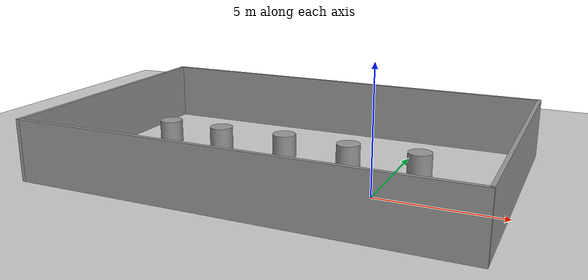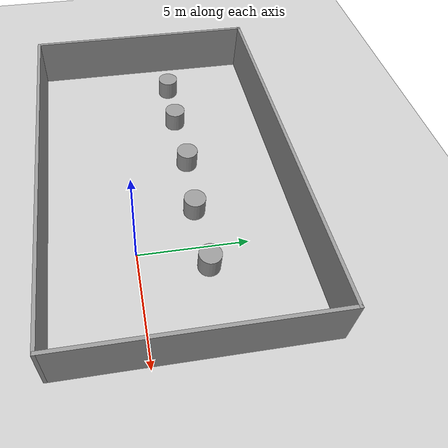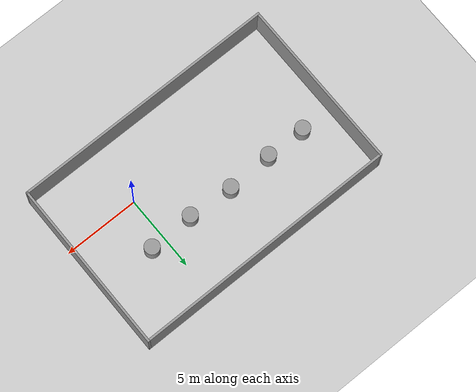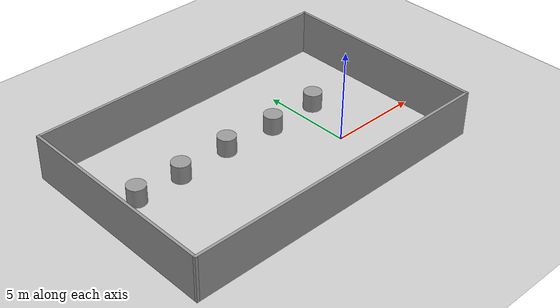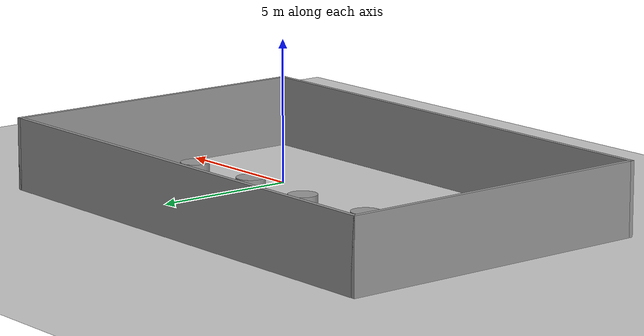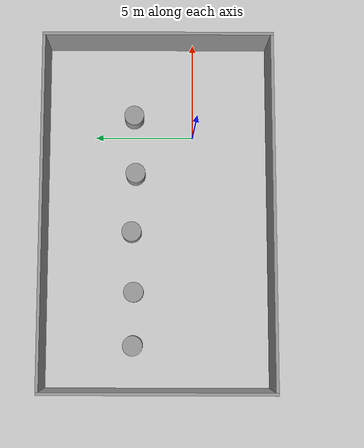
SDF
<sdf version="1.6">
 <world name="default">
  <light name="sun" type="directional">
   <pose>0 0 10 0 -0 0</pose>
   <diffuse>0.8 0.8 0.8 1</diffuse>
   <specular>0.2 0.2 0.2 1</specular>
   <attenuation>
    <range>1000</range>
    <constant>0.9</constant>
    <linear>0.01</linear>
    <quadratic>0.001</quadratic>
   </attenuation>
   <direction>-0.5 0.1 -0.9</direction>
  </light>
  <model name="ground_plane">
   <static>1</static>
   <link name="link">
    <collision name="collision">
     <geometry><plane><normal>0 0 1</normal><size>100 100</size></plane></geometry>
     <surface>
      <contact><collide_bitmask>65535</collide_bitmask></contact>
      <friction><ode><mu>100</mu><mu2>50</mu2></ode></friction>
     </surface>
    </collision>
    <visual name="visual">
     <cast_shadows>0</cast_shadows>
     <geometry><plane><normal>0 0 1</normal><size>100 100</size></plane></geometry>
     <material>
      <script><uri>file://media/materials/scripts/gazebo.material</uri><name>Gazebo/Grey</name></script>
     </material>
    </visual>
   </link>
  </model>
  <gravity>0 0 -9.8</gravity>
  <magnetic_field>6e-06 2.3e-05 -4.2e-05</magnetic_field>
  <atmosphere type="adiabatic"/>
  <physics name="default_physics" default="0" type="ode">
   <max_step_size>0.001</max_step_size>
   <real_time_factor>1</real_time_factor>
   <real_time_update_rate>1000</real_time_update_rate>
  </physics>
  <scene><ambient>0.4 0.4 0.4 1</ambient><background>0.7 0.7 0.7 1</background><shadows>1</shadows></scene>
  <audio><device>default</device></audio>
  <spherical_coordinates>
   <surface_model>EARTH_WGS84</surface_model>
   <latitude_deg>0</latitude_deg>
   <longitude_deg>0</longitude_deg>
   <elevation>0</elevation>
   <heading_deg>0</heading_deg>
  </spherical_coordinates>
  <model name="Wall">
   <pose>-3.98523 1.81274 0 0 -0 0</pose>
   <link name="Wall_3">
    <collision name="Wall_3_Collision">
     <geometry><box><size>17.75 0.15 2.5</size></box></geometry>
     <pose>0 0 1.25 0 -0 0</pose>
    </collision>
    <visual name="Wall_3_Visual">
     <pose>0 0 1.25 0 -0 0</pose>
     <geometry><box><size>17.75 0.15 2.5</size></box></geometry>
     <material>
      <script><uri>file://media/materials/scripts/gazebo.material</uri><name>Gazebo/Grey</name></script>
      <ambient>1 1 1 1</ambient>
     </material>
     <meta><layer>0</layer></meta>
    </visual>
    <pose>0 5.675 0 0 -0 0</pose>
   </link>
   <link name="Wall_4">
    <collision name="Wall_4_Collision">
     <geometry><box><size>11.5 0.15 2.5</size></box></geometry>
     <pose>0 0 1.25 0 -0 0</pose>
    </collision>
    <visual name="Wall_4_Visual">
     <pose>0 0 1.25 0 -0 0</pose>
     <geometry><box><size>11.5 0.15 2.5</size></box></geometry>
     <material>
      <script><uri>file://media/materials/scripts/gazebo.material</uri><name>Gazebo/Grey</name></script>
      <ambient>1 1 1 1</ambient>
     </material>
     <meta><layer>0</layer></meta>
    </visual>
    <pose>8.8 0 0 0 -0 -1.5708</pose>
   </link>
   <link name="Wall_5">
    <collision name="Wall_5_Collision">
     <geometry><box><size>17.75 0.15 2.5</size></box></geometry>
     <pose>0 0 1.25 0 -0 0</pose>
    </collision>
    <visual name="Wall_5_Visual">
     <pose>0 0 1.25 0 -0 0</pose>
     <geometry><box><size>17.75 0.15 2.5</size></box></geometry>
     <material>
      <script><uri>file://media/materials/scripts/gazebo.material</uri><name>Gazebo/Grey</name></script>
      <ambient>1 1 1 1</ambient>
     </material>
     <meta><layer>0</layer></meta>
    </visual>
    <pose>0 -5.675 0 0 -0 3.14159</pose>
   </link>
   <link name="Wall_6">
    <collision name="Wall_6_Collision">
     <geometry><box><size>11.5 0.15 2.5</size></box></geometry>
     <pose>0 0 1.25 0 -0 0</pose>
    </collision>
    <visual name="Wall_6_Visual">
     <pose>0 0 1.25 0 -0 0</pose>
     <geometry><box><size>11.5 0.15 2.5</size></box></geometry>
     <material>
      <script><uri>file://media/materials/scripts/gazebo.material</uri><name>Gazebo/Grey</name></script>
      <ambient>1 1 1 1</ambient>
     </material>
     <meta><layer>0</layer></meta>
    </visual>
    <pose>-8.8 0 0 0 -0 1.5708</pose>
   </link>
   <static>1</static>
  </model>
  <model name="unit_cylinder">
   <pose>-4.94846 3.11898 0.499992 -3e-06 -4e-06 -0</pose>
   <link name="link">
    <inertial>
     <mass>1</mass>
     <inertia><ixx>0.145833</ixx><ixy>0</ixy><ixz>0</ixz><iyy>0.145833</iyy><iyz>0</iyz><izz>0.125</izz></inertia>
    </inertial>
    <collision name="collision">
     <geometry><cylinder><radius>0.5</radius><length>1</length></cylinder></geometry>
    </collision>
    <visual name="visual">
     <geometry><cylinder><radius>0.5</radius><length>1</length></cylinder></geometry>
     <material>
      <script><name>Gazebo/Grey</name><uri>file://media/materials/scripts/gazebo.material</uri></script>
     </material>
    </visual>
   </link>
  </model>
  <model name="unit_cylinder_0">
   <pose>-1.9785 2.93304 0.499993 -3e-06 -3e-06 0</pose>
   <link name="link">
    <inertial>
     <mass>1</mass>
     <inertia><ixx>0.145833</ixx><ixy>0</ixy><ixz>0</ixz><iyy>0.145833</iyy><iyz>0</iyz><izz>0.125</izz></inertia>
    </inertial>
    <collision name="collision">
     <geometry><cylinder><radius>0.5</radius><length>1</length></cylinder></geometry>
    </collision>
    <visual name="visual">
     <geometry><cylinder><radius>0.5</radius><length>1</length></cylinder></geometry>
     <material>
      <script><name>Gazebo/Grey</name><uri>file://media/materials/scripts/gazebo.material</uri></script>
     </material>
    </visual>
   </link>
  </model>
  <model name="unit_cylinder_1">
   <pose>0.995839 3.01625 0.499997 3e-06 4e-06 -0</pose>
   <link name="link">
    <inertial>
     <mass>1</mass>
     <inertia><ixx>0.145833</ixx><ixy>0</ixy><ixz>0</ixz><iyy>0.145833</iyy><iyz>0</iyz><izz>0.125</izz></inertia>
    </inertial>
    <collision name="collision">
     <geometry><cylinder><radius>0.5</radius><length>1</length></cylinder></geometry>
    </collision>
    <visual name="visual">
     <geometry><cylinder><radius>0.5</radius><length>1</length></cylinder></geometry>
     <material>
      <script><name>Gazebo/Grey</name><uri>file://media/materials/scripts/gazebo.material</uri></script>
     </material>
    </visual>
   </link>
  </model>
  <model name="unit_cylinder_2">
   <pose>-7.97221 3.00648 0.499993 -3e-06 -4e-06 -0</pose>
   <link name="link">
    <inertial>
     <mass>1</mass>
     <inertia><ixx>0.145833</ixx><ixy>0</ixy><ixz>0</ixz><iyy>0.145833</iyy><iyz>0</iyz><izz>0.125</izz></inertia>
    </inertial>
    <collision name="collision">
     <geometry><cylinder><radius>0.5</radius><length>1</length></cylinder></geometry>
    </collision>
    <visual name="visual">
     <geometry><cylinder><radius>0.5</radius><length>1</length></cylinder></geometry>
     <material>
      <script><name>Gazebo/Grey</name><uri>file://media/materials/scripts/gazebo.material</uri></script>
     </material>
    </visual>
   </link>
  </model>
  <model name="unit_cylinder_3">
   <pose>-10.6103 3.03869 0.499997 3e-06 4e-06 -0</pose>
   <link name="link">
    <inertial>
     <mass>1</mass>
     <inertia><ixx>0.145833</ixx><ixy>0</ixy><ixz>0</ixz><iyy>0.145833</iyy><iyz>0</iyz><izz>0.125</izz></inertia>
    </inertial>
    <collision name="collision">
     <geometry><cylinder><radius>0.5</radius><length>1</length></cylinder></geometry>
    </collision>
    <visual name="visual">
     <geometry><cylinder><radius>0.5</radius><length>1</length></cylinder></geometry>
     <material>
      <script><name>Gazebo/Grey</name><uri>file://media/materials/scripts/gazebo.material</uri></script>
     </material>
    </visual>
   </link>
  </model>
 </world>
</sdf>
